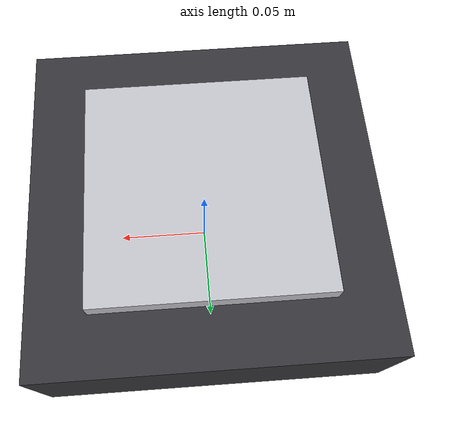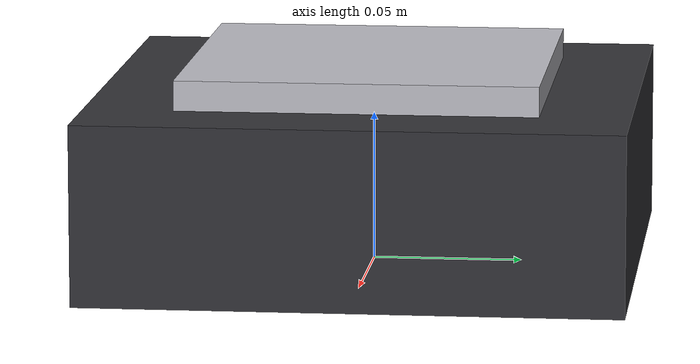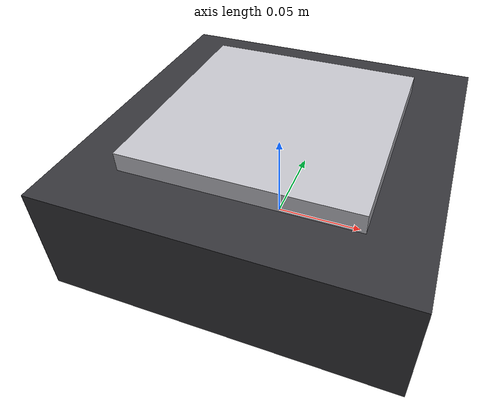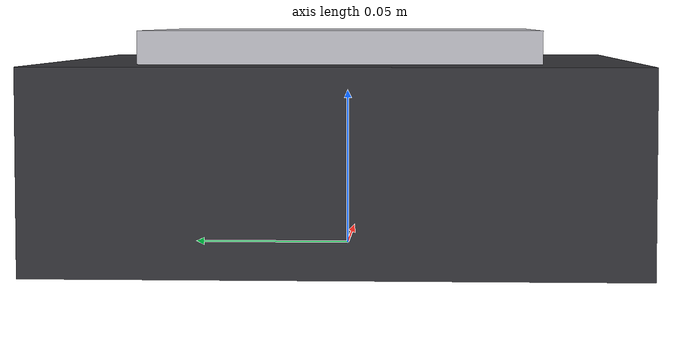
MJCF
<?xml version="1.0" encoding="utf-8"?>
<mujoco model="orbital_shaker">
  <compiler angle="radian" autolimits="true"/>
  <default>
    <default class="body"><geom contype="1" conaffinity="1"/></default>
  </default>
  <worldbody>
    <body name="base">
      <geom type="box" size="0.09 0.09 0.03" pos="0 0 0.03" rgba="0.2 0.2 0.22 1" class="body"/>
      <body name="platform" pos="0 0 0.065">
        <joint name="platform_joint" type="hinge" axis="1 0 0" range="-0.15 0.15" damping="0.8" frictionloss="0.5"/>
  <geom type="box" size="0.06 0.06 0.005" pos="0 0 0" rgba="0.75 0.75 0.78 1" class="body"/>
      </body>
    </body>
  </worldbody>
</mujoco>
